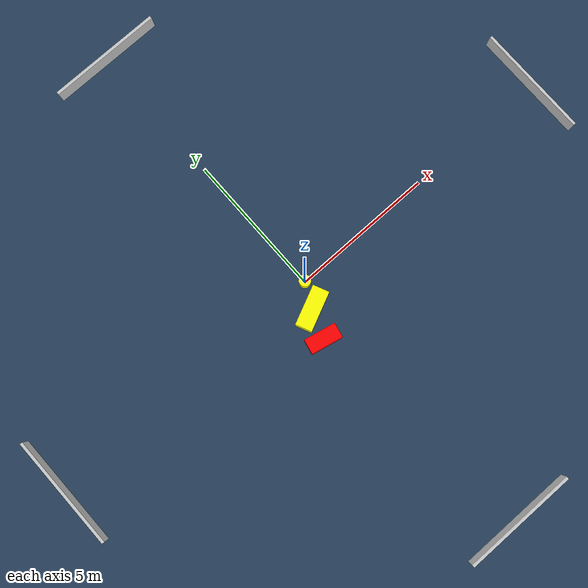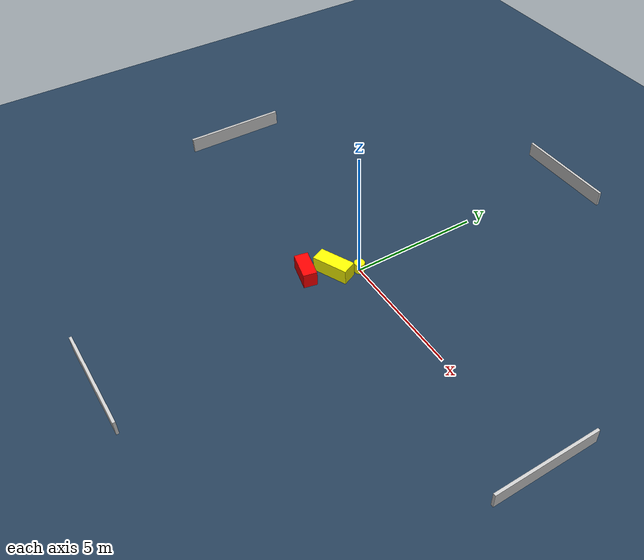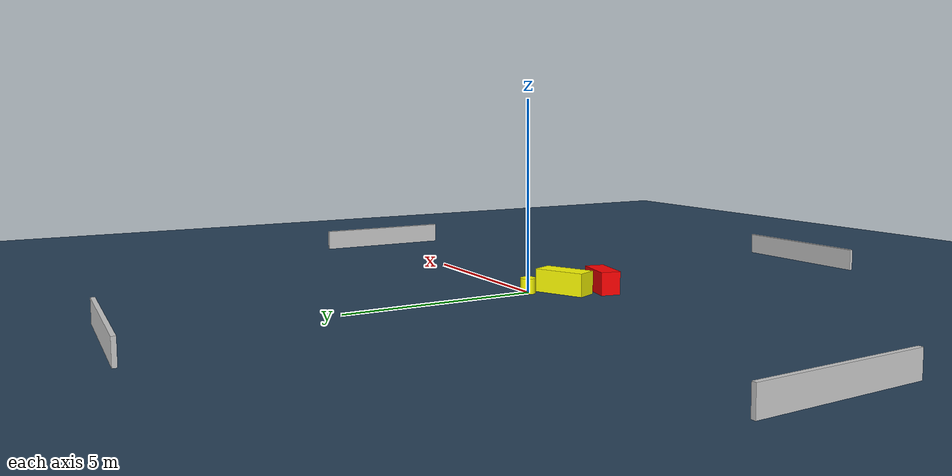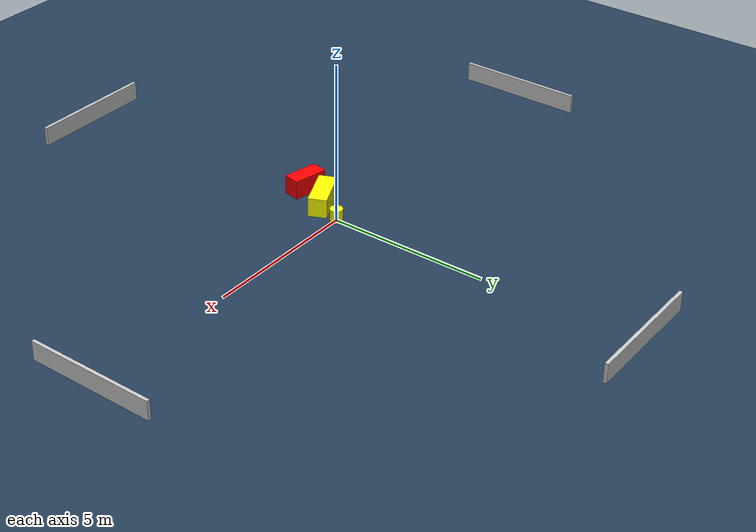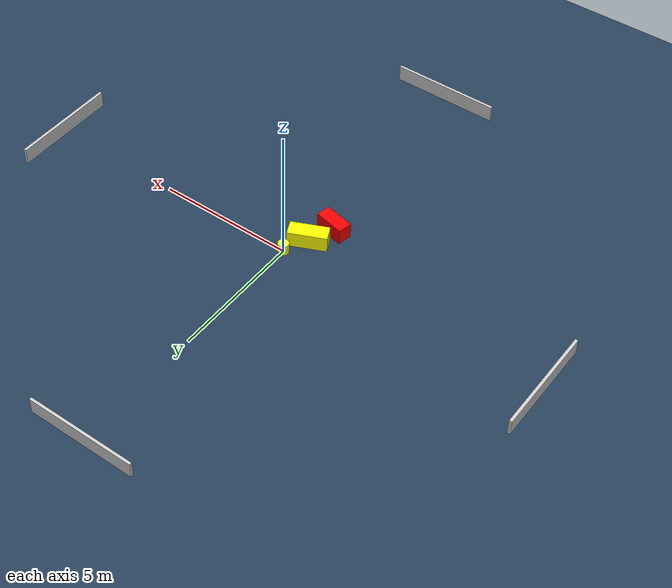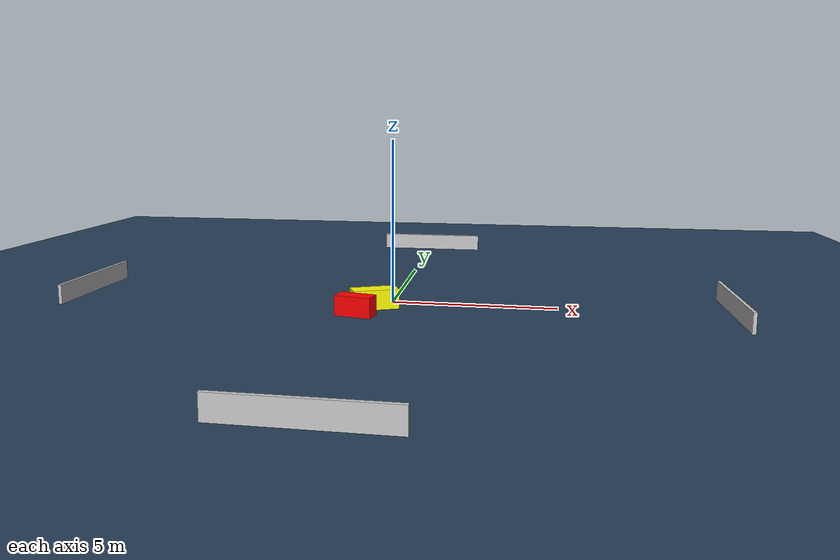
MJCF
<?xml version="1.0" ?>
<mujoco model="generated_environment">
  <option timestep="0.01" integrator="RK4" cone="elliptic"/>
  <default>
    <geom density="1"/>
  </default>
  <asset>
    <texture builtin="gradient" height="3072" name="skybox" rgb1="0.3 0.5 0.7" rgb2="0 0 0" type="skybox" width="512"/>
    <texture builtin="checker" height="300" name="groundplane" rgb1="0.2 0.3 0.4" rgb2="0.1 0.2 0.3" type="2d" width="300"/>
    <material name="groundplane" reflectance="0.2" texrepeat="5 5" texture="groundplane"/>
  </asset>
  <worldbody>
    <light dir="0 0 -1" directional="true" pos="0 0 1.5"/>
    <geom condim="3" friction="0.5 0.005 0.001" material="groundplane" name="floor" pos="0 0 0" size="0 0 0.05" type="plane"/>
    <body name="walls">
      <geom name="wall_1" condim="4" pos="-10.0 0.0 0.3" rgba="0.800000011920929 0.800000011920929 0.800000011920929 1.0" size="0.05 2.0 0.3" type="box"/>
      <geom name="wall_2" condim="4" pos="10.0 0.0 0.3" rgba="0.800000011920929 0.800000011920929 0.800000011920929 1.0" size="0.05 2.0 0.3" type="box"/>
      <geom name="wall_3" condim="4" pos="0.0 -10.0 0.3" rgba="0.800000011920929 0.800000011920929 0.800000011920929 1.0" size="2.0 0.05 0.3" type="box"/>
      <geom name="wall_4" condim="4" pos="0.0 10.0 0.3" rgba="0.800000011920929 0.800000011920929 0.800000011920929 1.0" size="2.0 0.05 0.3" type="box"/>
    </body>
    <body name="robot">
      <joint name="joint_x" type="slide" pos="0 0 0" axis="1 0 0"/>
      <joint name="joint_y" type="slide" pos="0 0 0" axis="0 1 0"/>
      <geom name="robot" type="cylinder" pos="0.0 0.0 0.2" size="0.2 0.2 0.0" mass="5.0" friction="1.0 0.005 0.0001" condim="4" rgba="1.0 1.0 0.0 1.0"/>
    </body>
    <body name="obstacle_1_movable">
      <geom name="obstacle_1_movable" condim="4" pos="-0.42575362426495317 -0.8384404702185039 0.3" euler="0 0 24.575072953814875" friction="0.0 0.005 0.001" rgba="1.0 1.0 0.0 1.0" size="0.6957649694664492 0.2848183933660638 0.3" type="box" mass="0.1"/>
      <joint type="free"/>
    </body>
    <body name="obstacle_2_static">
      <geom name="obstacle_2_static" condim="4" pos="-0.7997533543728337 -1.7880738779968326 0.3" euler="0 0 257.7471296981773" friction="0.0 0.005 0.001" rgba="1.0 0.0 0.0 1.0" size="0.2602077143609133 0.5542886747935399 0.3" type="box"/>
    </body>
  </worldbody>
  <actuator>
    <motor name="actuator_x" joint="joint_x" gear="1" ctrlrange="-1 1"/>
    <motor name="actuator_y" joint="joint_y" gear="1" ctrlrange="-1 1"/>
  </actuator>
</mujoco>
